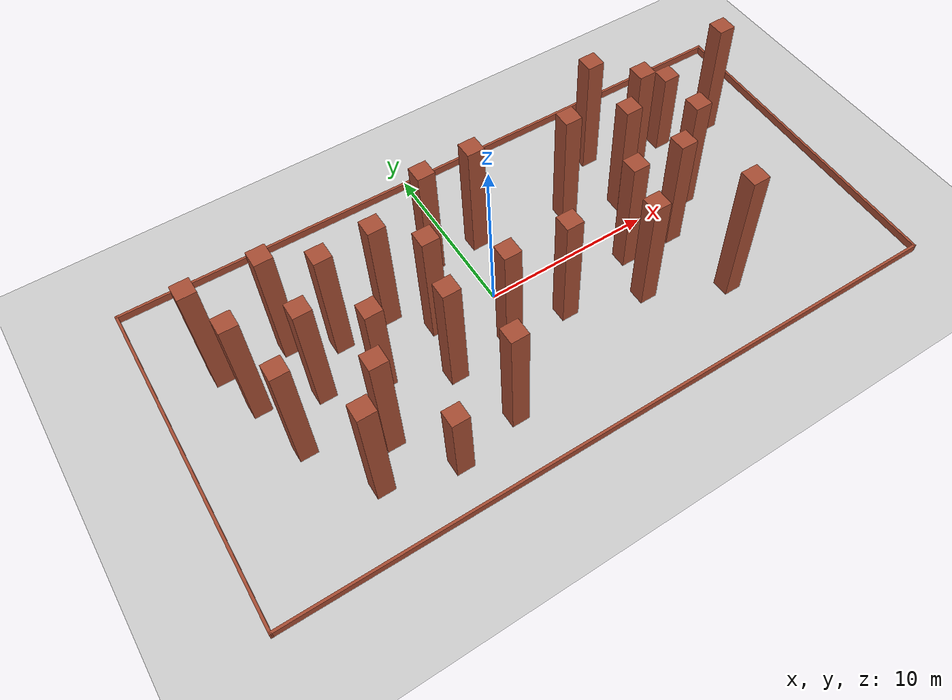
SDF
<sdf version="1.7">
 <world name="default">
  <light name="sun" type="directional">
   <pose>0 0 10 0 -0 0</pose>
   <diffuse>0.8 0.8 0.8 1</diffuse>
   <specular>0.1 0.1 0.1 1</specular>
   <attenuation>
    <range>1000</range>
    <constant>0.9</constant>
    <linear>0.01</linear>
    <quadratic>0.001</quadratic>
   </attenuation>
   <direction>-0.5 0.5 -1</direction>
   <spot><inner_angle>0</inner_angle><outer_angle>0</outer_angle><falloff>0</falloff></spot>
  </light>
  <model name="ground_plane">
   <static>1</static>
   <link name="link">
    <collision name="collision">
     <geometry><plane><normal>0 0 1</normal><size>100 100</size></plane></geometry>
     <surface><friction><ode><mu>100</mu><mu2>50</mu2></ode></friction></surface>
    </collision>
    <visual name="visual">
     <cast_shadows>0</cast_shadows>
     <geometry><plane><normal>0 0 1</normal><size>100 100</size></plane></geometry>
     <material>
      <script><uri>file://media/materials/scripts/gazebo.material</uri><name>Gazebo/Grey</name></script>
     </material>
    </visual>
   </link>
  </model>
  <gravity>0 0 -9.8</gravity>
  <magnetic_field>6e-06 2.3e-05 -4.2e-05</magnetic_field>
  <atmosphere type="adiabatic"/>
  <physics name="default_physics" default="0" type="ode">
   <max_step_size>0.001</max_step_size>
   <real_time_factor>1</real_time_factor>
   <real_time_update_rate>1000</real_time_update_rate>
  </physics>
  <scene><ambient>0.4 0.4 0.4 1</ambient><background>0.7 0.7 0.7 1</background><shadows>1</shadows></scene>
  <spherical_coordinates>
   <surface_model>EARTH_WGS84</surface_model>
   <latitude_deg>0</latitude_deg>
   <longitude_deg>0</longitude_deg>
   <elevation>0</elevation>
   <heading_deg>0</heading_deg>
  </spherical_coordinates>
  <audio><device>default</device></audio>
  <model name="Untitled">
   <pose>-10.5221 3.76724 -2.04579 0 -0 0</pose>
   <link name="Wall_0">
    <collision name="Wall_0_Collision">
     <geometry><box><size>1.01 1 9</size></box></geometry>
     <pose>0 0 5 0 -0 0</pose>
    </collision>
    <visual name="Wall_0_Visual">
     <pose>0 0 5 0 -0 0</pose>
     <geometry><box><size>1.01 1 10</size></box></geometry>
     <material>
      <script><uri>file://media/materials/scripts/gazebo.material</uri><name>Gazebo/Bricks</name></script>
      <ambient>1 1 1 1</ambient>
     </material>
     <meta><layer>0</layer></meta>
    </visual>
    <pose>-0.275 -0.51 0 0 -0 0</pose>
   </link>
   <static>1</static>
  </model>
  <model name="Untitled_clone">
   <pose>-7.3242 -0.82688 -1.89646 0 -0 0</pose>
   <link name="Wall_0">
    <collision name="Wall_0_Collision">
     <geometry><box><size>1.01 1 10</size></box></geometry>
     <pose>0 0 5 0 -0 0</pose>
    </collision>
    <visual name="Wall_0_Visual">
     <pose>0 0 5 0 -0 0</pose>
     <geometry><box><size>1.01 1 7</size></box></geometry>
     <material>
      <script><uri>file://media/materials/scripts/gazebo.material</uri><name>Gazebo/Bricks</name></script>
      <ambient>1 1 1 1</ambient>
     </material>
     <meta><layer>0</layer></meta>
    </visual>
    <pose>-0.275 -0.51 0 0 -0 0</pose>
   </link>
   <static>1</static>
  </model>
  <model name="Untitled_clone_1">
   <pose>-6.4547 -7.10206 -2.57276 0 -0 0</pose>
   <link name="Wall_0">
    <collision name="Wall_0_Collision">
     <geometry><box><size>1.01 1 10</size></box></geometry>
     <pose>0 0 5 0 -0 0</pose>
    </collision>
    <visual name="Wall_0_Visual">
     <pose>0 0 5 0 -0 0</pose>
     <geometry><box><size>1.01 1 5</size></box></geometry>
     <material>
      <script><uri>file://media/materials/scripts/gazebo.material</uri><name>Gazebo/Bricks</name></script>
      <ambient>1 1 1 1</ambient>
     </material>
     <meta><layer>0</layer></meta>
    </visual>
    <pose>-0.275 -0.51 0 0 -0 0</pose>
   </link>
   <static>1</static>
  </model>
  <model name="Untitled_clone_2">
   <pose>15.187 4.99069 -2.55065 0 -0 0</pose>
   <link name="Wall_0">
    <collision name="Wall_0_Collision">
     <geometry><box><size>1.01 1 8</size></box></geometry>
     <pose>0 0 5 0 -0 0</pose>
    </collision>
    <visual name="Wall_0_Visual">
     <pose>0 0 5 0 -0 0</pose>
     <geometry><box><size>1.01 1 6</size></box></geometry>
     <material>
      <script><uri>file://media/materials/scripts/gazebo.material</uri><name>Gazebo/Bricks</name></script>
      <ambient>1 1 1 1</ambient>
     </material>
     <meta><layer>0</layer></meta>
    </visual>
    <pose>-0.275 -0.51 0 0 -0 0</pose>
   </link>
   <static>1</static>
  </model>
  <model name="Untitled_clone_3">
   <pose>11.5749 -5.93521 -0.962573 0 -0 0</pose>
   <link name="Wall_0">
    <collision name="Wall_0_Collision">
     <geometry><box><size>1.01 1 12</size></box></geometry>
     <pose>0 0 5 0 -0 0</pose>
    </collision>
    <visual name="Wall_0_Visual">
     <pose>0 0 5 0 -0 0</pose>
     <geometry><box><size>1.01 1 10</size></box></geometry>
     <material>
      <script><uri>file://media/materials/scripts/gazebo.material</uri><name>Gazebo/Bricks</name></script>
      <ambient>1 1 1 1</ambient>
     </material>
     <meta><layer>0</layer></meta>
    </visual>
    <pose>-0.275 -0.51 0 0 -0 0</pose>
   </link>
   <static>1</static>
  </model>
  <model name="Untitled_clone_5">
   <pose>-1.36445 4.35694 -1.7469 0 -0 0</pose>
   <link name="Wall_0">
    <collision name="Wall_0_Collision">
     <geometry><box><size>1.01 1 7</size></box></geometry>
     <pose>0 0 5 0 -0 0</pose>
    </collision>
    <visual name="Wall_0_Visual">
     <pose>0 0 5 0 -0 0</pose>
     <geometry><box><size>1.01 1 9</size></box></geometry>
     <material>
      <script><uri>file://media/materials/scripts/gazebo.material</uri><name>Gazebo/Bricks</name></script>
      <ambient>1 1 1 1</ambient>
     </material>
     <meta><layer>0</layer></meta>
    </visual>
    <pose>-0.275 -0.51 0 0 -0 0</pose>
   </link>
   <static>1</static>
  </model>
  <model name="Untitled_1">
   <pose>1.88811 -0.414439 0 0 0 -0.02235</pose>
   <link name="Wall_10">
    <collision name="Wall_10_Collision">
     <geometry><box><size>20.1506 0.15 0.5</size></box></geometry>
     <pose>0 0 0.25 0 -0 0</pose>
    </collision>
    <visual name="Wall_10_Visual">
     <pose>0 0 0.25 0 -0 0</pose>
     <geometry><box><size>20.1506 0.15 0.5</size></box></geometry>
     <material>
      <script><uri>file://media/materials/scripts/gazebo.material</uri><name>Gazebo/Bricks</name></script>
      <ambient>1 1 1 1</ambient>
     </material>
     <meta><layer>0</layer></meta>
    </visual>
    <pose>-19.9251 -0.24986 0 0 -0 1.5783</pose>
   </link>
   <link name="Wall_3">
    <collision name="Wall_3_Collision">
     <geometry><box><size>40.1531 0.15 0.5</size></box></geometry>
     <pose>0 0 0.25 0 -0 0</pose>
    </collision>
    <visual name="Wall_3_Visual">
     <pose>0 0 0.25 0 -0 0</pose>
     <geometry><box><size>40.1531 0.15 0.5</size></box></geometry>
     <material>
      <script><uri>file://media/materials/scripts/gazebo.material</uri><name>Gazebo/Bricks</name></script>
      <ambient>1 1 1 1</ambient>
     </material>
     <meta><layer>0</layer></meta>
    </visual>
    <pose>-0.000142 10.0001 0 0 -0 0.012499</pose>
   </link>
   <link name="Wall_8">
    <collision name="Wall_8_Collision">
     <geometry><box><size>20 0.15 0.5</size></box></geometry>
     <pose>0 0 0.25 0 -0 0</pose>
    </collision>
    <visual name="Wall_8_Visual">
     <pose>0 0 0.25 0 -0 0</pose>
     <geometry><box><size>20 0.15 0.5</size></box></geometry>
     <material>
      <script><uri>file://media/materials/scripts/gazebo.material</uri><name>Gazebo/Bricks</name></script>
      <ambient>1 1 1 1</ambient>
     </material>
     <meta><layer>0</layer></meta>
    </visual>
    <pose>19.9999 0.32514 0 0 -0 -1.5708</pose>
   </link>
   <link name="Wall_9">
    <collision name="Wall_9_Collision">
     <geometry><box><size>40.0053 0.15 0.5</size></box></geometry>
     <pose>0 0 0.25 0 -0 0</pose>
    </collision>
    <visual name="Wall_9_Visual">
     <pose>0 0 0.25 0 -0 0</pose>
     <geometry><box><size>40.0053 0.15 0.5</size></box></geometry>
     <material>
      <script><uri>file://media/materials/scripts/gazebo.material</uri><name>Gazebo/Bricks</name></script>
      <ambient>1 1 1 1</ambient>
     </material>
     <meta><layer>0</layer></meta>
    </visual>
    <pose>0.074858 -9.92486 0 0 -0 -3.12528</pose>
   </link>
   <static>1</static>
  </model>
  <model name="Untitled_clone_5_clone">
   <pose>1.59858 4.38905 -1.7469 0 -0 0</pose>
   <link name="Wall_0">
    <collision name="Wall_0_Collision">
     <geometry><box><size>1.01 1 7</size></box></geometry>
     <pose>0 0 5 0 -0 0</pose>
    </collision>
    <visual name="Wall_0_Visual">
     <pose>0 0 5 0 -0 0</pose>
     <geometry><box><size>1.01 1 9</size></box></geometry>
     <material>
      <script><uri>file://media/materials/scripts/gazebo.material</uri><name>Gazebo/Bricks</name></script>
      <ambient>1 1 1 1</ambient>
     </material>
     <meta><layer>0</layer></meta>
    </visual>
    <pose>-0.275 -0.51 0 0 -0 0</pose>
   </link>
   <static>1</static>
  </model>
  <model name="Untitled_clone_5_clone_0">
   <pose>10.5372 6.24314 -1.7469 0 -0 0</pose>
   <link name="Wall_0">
    <collision name="Wall_0_Collision">
     <geometry><box><size>1.01 1 7</size></box></geometry>
     <pose>0 0 5 0 -0 0</pose>
    </collision>
    <visual name="Wall_0_Visual">
     <pose>0 0 5 0 -0 0</pose>
     <geometry><box><size>1.01 1 9</size></box></geometry>
     <material>
      <script><uri>file://media/materials/scripts/gazebo.material</uri><name>Gazebo/Bricks</name></script>
      <ambient>1 1 1 1</ambient>
     </material>
     <meta><layer>0</layer></meta>
    </visual>
    <pose>-0.275 -0.51 0 0 -0 0</pose>
   </link>
   <static>1</static>
  </model>
  <model name="Untitled_clone_5_clone_1">
   <pose>13.4871 0.511383 -1.7469 0 -0 0</pose>
   <link name="Wall_0">
    <collision name="Wall_0_Collision">
     <geometry><box><size>1.01 1 7</size></box></geometry>
     <pose>0 0 5 0 -0 0</pose>
    </collision>
    <visual name="Wall_0_Visual">
     <pose>0 0 5 0 -0 0</pose>
     <geometry><box><size>1.01 1 9</size></box></geometry>
     <material>
      <script><uri>file://media/materials/scripts/gazebo.material</uri><name>Gazebo/Bricks</name></script>
      <ambient>1 1 1 1</ambient>
     </material>
     <meta><layer>0</layer></meta>
    </visual>
    <pose>-0.275 -0.51 0 0 -0 0</pose>
   </link>
   <static>1</static>
  </model>
  <model name="Untitled_clone_5_clone_2">
   <pose>7.07313 3.4395 -1.7469 0 -0 0</pose>
   <link name="Wall_0">
    <collision name="Wall_0_Collision">
     <geometry><box><size>1.01 1 7</size></box></geometry>
     <pose>0 0 5 0 -0 0</pose>
    </collision>
    <visual name="Wall_0_Visual">
     <pose>0 0 5 0 -0 0</pose>
     <geometry><box><size>1.01 1 9</size></box></geometry>
     <material>
      <script><uri>file://media/materials/scripts/gazebo.material</uri><name>Gazebo/Bricks</name></script>
      <ambient>1 1 1 1</ambient>
     </material>
     <meta><layer>0</layer></meta>
    </visual>
    <pose>-0.275 -0.51 0 0 -0 0</pose>
   </link>
   <static>1</static>
  </model>
  <model name="Untitled_clone_5_clone_3">
   <pose>8.03244 -1.18901 -1.7469 0 -0 0</pose>
   <link name="Wall_0">
    <collision name="Wall_0_Collision">
     <geometry><box><size>1.01 1 7</size></box></geometry>
     <pose>0 0 5 0 -0 0</pose>
    </collision>
    <visual name="Wall_0_Visual">
     <pose>0 0 5 0 -0 0</pose>
     <geometry><box><size>1.01 1 9</size></box></geometry>
     <material>
      <script><uri>file://media/materials/scripts/gazebo.material</uri><name>Gazebo/Bricks</name></script>
      <ambient>1 1 1 1</ambient>
     </material>
     <meta><layer>0</layer></meta>
    </visual>
    <pose>-0.275 -0.51 0 0 -0 0</pose>
   </link>
   <static>1</static>
  </model>
  <model name="Untitled_clone_5_clone_4">
   <pose>-4.00935 -2.53732 -1.7469 0 -0 0</pose>
   <link name="Wall_0">
    <collision name="Wall_0_Collision">
     <geometry><box><size>1.01 1 7</size></box></geometry>
     <pose>0 0 5 0 -0 0</pose>
    </collision>
    <visual name="Wall_0_Visual">
     <pose>0 0 5 0 -0 0</pose>
     <geometry><box><size>1.01 1 9</size></box></geometry>
     <material>
      <script><uri>file://media/materials/scripts/gazebo.material</uri><name>Gazebo/Bricks</name></script>
      <ambient>1 1 1 1</ambient>
     </material>
     <meta><layer>0</layer></meta>
    </visual>
    <pose>-0.275 -0.51 0 0 -0 0</pose>
   </link>
   <static>1</static>
  </model>
  <model name="Untitled_clone_5_clone_5">
   <pose>-5.13112 2.64805 -1.7469 0 -0 0</pose>
   <link name="Wall_0">
    <collision name="Wall_0_Collision">
     <geometry><box><size>1.01 1 7</size></box></geometry>
     <pose>0 0 5 0 -0 0</pose>
    </collision>
    <visual name="Wall_0_Visual">
     <pose>0 0 5 0 -0 0</pose>
     <geometry><box><size>1.01 1 9</size></box></geometry>
     <material>
      <script><uri>file://media/materials/scripts/gazebo.material</uri><name>Gazebo/Bricks</name></script>
      <ambient>1 1 1 1</ambient>
     </material>
     <meta><layer>0</layer></meta>
    </visual>
    <pose>-0.275 -0.51 0 0 -0 0</pose>
   </link>
   <static>1</static>
  </model>
  <model name="Untitled_clone_5_clone_6">
   <pose>-8.69362 -4.119 -1.7469 0 -0 0</pose>
   <link name="Wall_0">
    <collision name="Wall_0_Collision">
     <geometry><box><size>1.01 1 7</size></box></geometry>
     <pose>0 0 5 0 -0 0</pose>
    </collision>
    <visual name="Wall_0_Visual">
     <pose>0 0 5 0 -0 0</pose>
     <geometry><box><size>1.01 1 9</size></box></geometry>
     <material>
      <script><uri>file://media/materials/scripts/gazebo.material</uri><name>Gazebo/Bricks</name></script>
      <ambient>1 1 1 1</ambient>
     </material>
     <meta><layer>0</layer></meta>
    </visual>
    <pose>-0.275 -0.51 0 0 -0 0</pose>
   </link>
   <static>1</static>
  </model>
  <model name="Untitled_clone_5_clone_7">
   <pose>-10.3119 -6.03927 -1.7469 0 -0 0</pose>
   <link name="Wall_0">
    <collision name="Wall_0_Collision">
     <geometry><box><size>1.01 1 7</size></box></geometry>
     <pose>0 0 5 0 -0 0</pose>
    </collision>
    <visual name="Wall_0_Visual">
     <pose>0 0 5 0 -0 0</pose>
     <geometry><box><size>1.01 1 9</size></box></geometry>
     <material>
      <script><uri>file://media/materials/scripts/gazebo.material</uri><name>Gazebo/Bricks</name></script>
      <ambient>1 1 1 1</ambient>
     </material>
     <meta><layer>0</layer></meta>
    </visual>
    <pose>-0.275 -0.51 0 0 -0 0</pose>
   </link>
   <static>1</static>
  </model>
  <model name="Untitled_clone_5_clone_8">
   <pose>-12.557 -2.1768 -1.7469 0 -0 0</pose>
   <link name="Wall_0">
    <collision name="Wall_0_Collision">
     <geometry><box><size>1.01 1 7</size></box></geometry>
     <pose>0 0 5 0 -0 0</pose>
    </collision>
    <visual name="Wall_0_Visual">
     <pose>0 0 5 0 -0 0</pose>
     <geometry><box><size>1.01 1 9</size></box></geometry>
     <material>
      <script><uri>file://media/materials/scripts/gazebo.material</uri><name>Gazebo/Bricks</name></script>
      <ambient>1 1 1 1</ambient>
     </material>
     <meta><layer>0</layer></meta>
    </visual>
    <pose>-0.275 -0.51 0 0 -0 0</pose>
   </link>
   <static>1</static>
  </model>
  <model name="Untitled_clone_5_clone_9">
   <pose>-13.426 1.29377 -1.7469 0 -0 0</pose>
   <link name="Wall_0">
    <collision name="Wall_0_Collision">
     <geometry><box><size>1.01 1 7</size></box></geometry>
     <pose>0 0 5 0 -0 0</pose>
    </collision>
    <visual name="Wall_0_Visual">
     <pose>0 0 5 0 -0 0</pose>
     <geometry><box><size>1.01 1 9</size></box></geometry>
     <material>
      <script><uri>file://media/materials/scripts/gazebo.material</uri><name>Gazebo/Bricks</name></script>
      <ambient>1 1 1 1</ambient>
     </material>
     <meta><layer>0</layer></meta>
    </visual>
    <pose>-0.275 -0.51 0 0 -0 0</pose>
   </link>
   <static>1</static>
  </model>
  <model name="Untitled_clone_5_clone_10">
   <pose>-14.282 4.05087 -1.7469 0 -0 0</pose>
   <link name="Wall_0">
    <collision name="Wall_0_Collision">
     <geometry><box><size>1.01 1 7</size></box></geometry>
     <pose>0 0 5 0 -0 0</pose>
    </collision>
    <visual name="Wall_0_Visual">
     <pose>0 0 5 0 -0 0</pose>
     <geometry><box><size>1.01 1 9</size></box></geometry>
     <material>
      <script><uri>file://media/materials/scripts/gazebo.material</uri><name>Gazebo/Bricks</name></script>
      <ambient>1 1 1 1</ambient>
     </material>
     <meta><layer>0</layer></meta>
    </visual>
    <pose>-0.275 -0.51 0 0 -0 0</pose>
   </link>
   <static>1</static>
  </model>
  <model name="Untitled_clone_5_clone_11">
   <pose>-10.2899 0.203085 -1.7469 0 -0 0</pose>
   <link name="Wall_0">
    <collision name="Wall_0_Collision">
     <geometry><box><size>1.01 1 7</size></box></geometry>
     <pose>0 0 5 0 -0 0</pose>
    </collision>
    <visual name="Wall_0_Visual">
     <pose>0 0 5 0 -0 0</pose>
     <geometry><box><size>1.01 1 9</size></box></geometry>
     <material>
      <script><uri>file://media/materials/scripts/gazebo.material</uri><name>Gazebo/Bricks</name></script>
      <ambient>1 1 1 1</ambient>
     </material>
     <meta><layer>0</layer></meta>
    </visual>
    <pose>-0.275 -0.51 0 0 -0 0</pose>
   </link>
   <static>1</static>
  </model>
  <model name="Untitled_clone_5_clone_12">
   <pose>-8.1192 2.4459 -1.7469 0 -0 0</pose>
   <link name="Wall_0">
    <collision name="Wall_0_Collision">
     <geometry><box><size>1.01 1 7</size></box></geometry>
     <pose>0 0 5 0 -0 0</pose>
    </collision>
    <visual name="Wall_0_Visual">
     <pose>0 0 5 0 -0 0</pose>
     <geometry><box><size>1.01 1 9</size></box></geometry>
     <material>
      <script><uri>file://media/materials/scripts/gazebo.material</uri><name>Gazebo/Bricks</name></script>
      <ambient>1 1 1 1</ambient>
     </material>
     <meta><layer>0</layer></meta>
    </visual>
    <pose>-0.275 -0.51 0 0 -0 0</pose>
   </link>
   <static>1</static>
  </model>
  <model name="Untitled_clone_5_clone_13">
   <pose>-3.30355 0.602167 -1.7469 0 -0 0</pose>
   <link name="Wall_0">
    <collision name="Wall_0_Collision">
     <geometry><box><size>1.01 1 7</size></box></geometry>
     <pose>0 0 5 0 -0 0</pose>
    </collision>
    <visual name="Wall_0_Visual">
     <pose>0 0 5 0 -0 0</pose>
     <geometry><box><size>1.01 1 9</size></box></geometry>
     <material>
      <script><uri>file://media/materials/scripts/gazebo.material</uri><name>Gazebo/Bricks</name></script>
      <ambient>1 1 1 1</ambient>
     </material>
     <meta><layer>0</layer></meta>
    </visual>
    <pose>-0.275 -0.51 0 0 -0 0</pose>
   </link>
   <static>1</static>
  </model>
  <model name="Untitled_clone_5_clone_14">
   <pose>-0.448707 -2.25577 -1.7469 0 -0 0</pose>
   <link name="Wall_0">
    <collision name="Wall_0_Collision">
     <geometry><box><size>1.01 1 7</size></box></geometry>
     <pose>0 0 5 0 -0 0</pose>
    </collision>
    <visual name="Wall_0_Visual">
     <pose>0 0 5 0 -0 0</pose>
     <geometry><box><size>1.01 1 9</size></box></geometry>
     <material>
      <script><uri>file://media/materials/scripts/gazebo.material</uri><name>Gazebo/Bricks</name></script>
      <ambient>1 1 1 1</ambient>
     </material>
     <meta><layer>0</layer></meta>
    </visual>
    <pose>-0.275 -0.51 0 0 -0 0</pose>
   </link>
   <static>1</static>
  </model>
  <model name="Untitled_clone_5_clone_15">
   <pose>3.07002 -2.40628 -1.7469 0 -0 0</pose>
   <link name="Wall_0">
    <collision name="Wall_0_Collision">
     <geometry><box><size>1.01 1 7</size></box></geometry>
     <pose>0 0 5 0 -0 0</pose>
    </collision>
    <visual name="Wall_0_Visual">
     <pose>0 0 5 0 -0 0</pose>
     <geometry><box><size>1.01 1 9</size></box></geometry>
     <material>
      <script><uri>file://media/materials/scripts/gazebo.material</uri><name>Gazebo/Bricks</name></script>
      <ambient>1 1 1 1</ambient>
     </material>
     <meta><layer>0</layer></meta>
    </visual>
    <pose>-0.275 -0.51 0 0 -0 0</pose>
   </link>
   <static>1</static>
  </model>
  <model name="Untitled_clone_5_clone_16">
   <pose>7.32592 -3.82981 -1.7469 0 -0 0</pose>
   <link name="Wall_0">
    <collision name="Wall_0_Collision">
     <geometry><box><size>1.01 1 7</size></box></geometry>
     <pose>0 0 5 0 -0 0</pose>
    </collision>
    <visual name="Wall_0_Visual">
     <pose>0 0 5 0 -0 0</pose>
     <geometry><box><size>1.01 1 9</size></box></geometry>
     <material>
      <script><uri>file://media/materials/scripts/gazebo.material</uri><name>Gazebo/Bricks</name></script>
      <ambient>1 1 1 1</ambient>
     </material>
     <meta><layer>0</layer></meta>
    </visual>
    <pose>-0.275 -0.51 0 0 -0 0</pose>
   </link>
   <static>1</static>
  </model>
  <model name="Untitled_clone_5_clone_17">
   <pose>10.192 2.28018 -1.7469 0 -0 0</pose>
   <link name="Wall_0">
    <collision name="Wall_0_Collision">
     <geometry><box><size>1.01 1 7</size></box></geometry>
     <pose>0 0 5 0 -0 0</pose>
    </collision>
    <visual name="Wall_0_Visual">
     <pose>0 0 5 0 -0 0</pose>
     <geometry><box><size>1.01 1 9</size></box></geometry>
     <material>
      <script><uri>file://media/materials/scripts/gazebo.material</uri><name>Gazebo/Bricks</name></script>
      <ambient>1 1 1 1</ambient>
     </material>
     <meta><layer>0</layer></meta>
    </visual>
    <pose>-0.275 -0.51 0 0 -0 0</pose>
   </link>
   <static>1</static>
  </model>
  <model name="Untitled_clone_5_clone_18">
   <pose>12.4595 4.08044 -1.7469 0 -0 0</pose>
   <link name="Wall_0">
    <collision name="Wall_0_Collision">
     <geometry><box><size>1.01 1 7</size></box></geometry>
     <pose>0 0 5 0 -0 0</pose>
    </collision>
    <visual name="Wall_0_Visual">
     <pose>0 0 5 0 -0 0</pose>
     <geometry><box><size>1.01 1 9</size></box></geometry>
     <material>
      <script><uri>file://media/materials/scripts/gazebo.material</uri><name>Gazebo/Bricks</name></script>
      <ambient>1 1 1 1</ambient>
     </material>
     <meta><layer>0</layer></meta>
    </visual>
    <pose>-0.275 -0.51 0 0 -0 0</pose>
   </link>
   <static>1</static>
  </model>
  <model name="Untitled_clone_5_clone_19">
   <pose>18.4961 4.56013 -1.7469 0 -0 0</pose>
   <link name="Wall_0">
    <collision name="Wall_0_Collision">
     <geometry><box><size>1.01 1 7</size></box></geometry>
     <pose>0 0 5 0 -0 0</pose>
    </collision>
    <visual name="Wall_0_Visual">
     <pose>0 0 5 0 -0 0</pose>
     <geometry><box><size>1.01 1 9</size></box></geometry>
     <material>
      <script><uri>file://media/materials/scripts/gazebo.material</uri><name>Gazebo/Bricks</name></script>
      <ambient>1 1 1 1</ambient>
     </material>
     <meta><layer>0</layer></meta>
    </visual>
    <pose>-0.275 -0.51 0 0 -0 0</pose>
   </link>
   <static>1</static>
  </model>
  <model name="Untitled_clone_5_clone_20">
   <pose>11.072 -1.25794 -1.7469 0 -0 0</pose>
   <link name="Wall_0">
    <collision name="Wall_0_Collision">
     <geometry><box><size>1.01 1 7</size></box></geometry>
     <pose>0 0 5 0 -0 0</pose>
    </collision>
    <visual name="Wall_0_Visual">
     <pose>0 0 5 0 -0 0</pose>
     <geometry><box><size>1.01 1 9</size></box></geometry>
     <material>
      <script><uri>file://media/materials/scripts/gazebo.material</uri><name>Gazebo/Bricks</name></script>
      <ambient>1 1 1 1</ambient>
     </material>
     <meta><layer>0</layer></meta>
    </visual>
    <pose>-0.275 -0.51 0 0 -0 0</pose>
   </link>
   <static>1</static>
  </model>
  <model name="Untitled_clone_5_clone_21">
   <pose>-2.73243 -6.35348 -1.7469 0 -0 0</pose>
   <link name="Wall_0">
    <collision name="Wall_0_Collision">
     <geometry><box><size>1.01 1 7</size></box></geometry>
     <pose>0 0 5 0 -0 0</pose>
    </collision>
    <visual name="Wall_0_Visual">
     <pose>0 0 5 0 -0 0</pose>
     <geometry><box><size>1.01 1 9</size></box></geometry>
     <material>
      <script><uri>file://media/materials/scripts/gazebo.material</uri><name>Gazebo/Bricks</name></script>
      <ambient>1 1 1 1</ambient>
     </material>
     <meta><layer>0</layer></meta>
    </visual>
    <pose>-0.275 -0.51 0 0 -0 0</pose>
   </link>
   <static>1</static>
  </model>
 </world>
</sdf>
